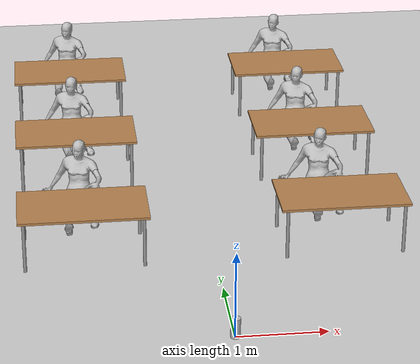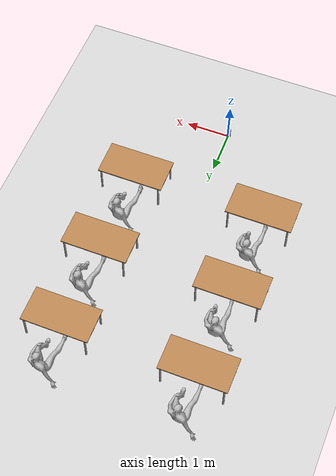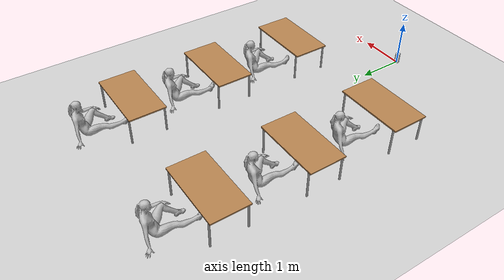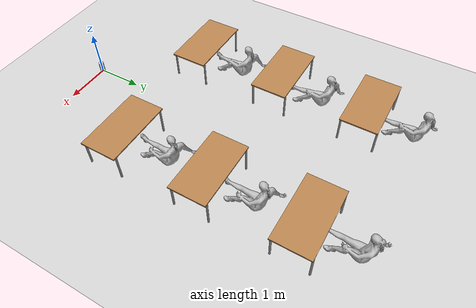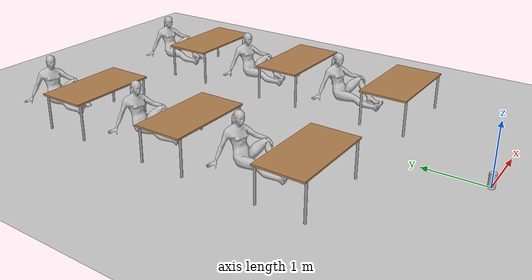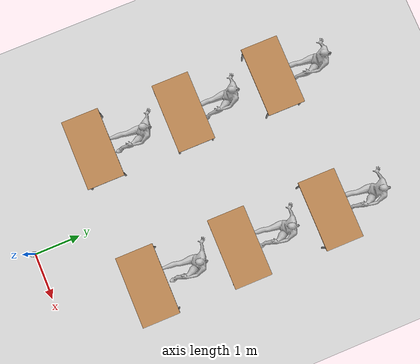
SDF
<sdf version="1.6">
 <world name="default">
  <light name="sun" type="directional">
   <pose>0 0 10 0 -0 0</pose>
   <diffuse>0.8 0.8 0.8 1</diffuse>
   <specular>0.2 0.2 0.2 1</specular>
   <attenuation>
    <range>1000</range>
    <constant>0.9</constant>
    <linear>0.01</linear>
    <quadratic>0.001</quadratic>
   </attenuation>
   <direction>-0.5 0.1 -0.9</direction>
  </light>
  <model name="ground_plane">
   <static>1</static>
   <link name="link">
    <collision name="collision">
     <geometry><plane><normal>0 0 1</normal><size>100 100</size></plane></geometry>
     <surface><friction><ode><mu>100</mu><mu2>50</mu2></ode></friction></surface>
    </collision>
    <visual name="visual">
     <cast_shadows>0</cast_shadows>
     <geometry><plane><normal>0 0 1</normal><size>100 100</size></plane></geometry>
     <material>
      <script><uri>file://media/materials/scripts/gazebo.material</uri><name>Gazebo/Grey</name></script>
     </material>
    </visual>
   </link>
  </model>
  <gravity>0 0 -9.8</gravity>
  <magnetic_field>6e-06 2.3e-05 -4.2e-05</magnetic_field>
  <atmosphere type="adiabatic"/>
  <physics name="default_physics" default="0" type="ode">
   <max_step_size>0.001</max_step_size>
   <real_time_factor>1</real_time_factor>
   <real_time_update_rate>1000</real_time_update_rate>
  </physics>
  <scene><ambient>0.4 0.4 0.4 1</ambient><background>0.7 0.7 0.7 1</background><shadows>1</shadows></scene>
  <audio><device>default</device></audio>
  <spherical_coordinates>
   <surface_model>EARTH_WGS84</surface_model>
   <latitude_deg>0</latitude_deg>
   <longitude_deg>0</longitude_deg>
   <elevation>0</elevation>
   <heading_deg>0</heading_deg>
  </spherical_coordinates>
  <model name="table">
   <static>1</static>
   <link name="link">
    <collision name="surface">
     <pose>0 0 1 0 -0 0</pose>
     <geometry><box><size>1.5 0.8 0.03</size></box></geometry>
     <surface><friction><ode><mu>0.6</mu><mu2>0.6</mu2></ode></friction></surface>
    </collision>
    <visual name="visual1">
     <pose>0 0 1 0 -0 0</pose>
     <geometry><box><size>1.5 0.8 0.03</size></box></geometry>
     <material>
      <script><uri>file://media/materials/scripts/gazebo.material</uri><name>Gazebo/Wood</name></script>
     </material>
    </visual>
    <collision name="front_left_leg">
     <pose>0.68 0.38 0.5 0 -0 0</pose>
     <geometry><cylinder><radius>0.02</radius><length>1</length></cylinder></geometry>
    </collision>
    <visual name="front_left_leg">
     <pose>0.68 0.38 0.5 0 -0 0</pose>
     <geometry><cylinder><radius>0.02</radius><length>1</length></cylinder></geometry>
     <material>
      <script><uri>file://media/materials/scripts/gazebo.material</uri><name>Gazebo/Grey</name></script>
     </material>
    </visual>
    <collision name="front_right_leg">
     <pose>0.68 -0.38 0.5 0 -0 0</pose>
     <geometry><cylinder><radius>0.02</radius><length>1</length></cylinder></geometry>
    </collision>
    <visual name="front_right_leg">
     <pose>0.68 -0.38 0.5 0 -0 0</pose>
     <geometry><cylinder><radius>0.02</radius><length>1</length></cylinder></geometry>
     <material>
      <script><uri>file://media/materials/scripts/gazebo.material</uri><name>Gazebo/Grey</name></script>
     </material>
    </visual>
    <collision name="back_right_leg">
     <pose>-0.68 -0.38 0.5 0 -0 0</pose>
     <geometry><cylinder><radius>0.02</radius><length>1</length></cylinder></geometry>
    </collision>
    <visual name="back_right_leg">
     <pose>-0.68 -0.38 0.5 0 -0 0</pose>
     <geometry><cylinder><radius>0.02</radius><length>1</length></cylinder></geometry>
     <material>
      <script><uri>file://media/materials/scripts/gazebo.material</uri><name>Gazebo/Grey</name></script>
     </material>
    </visual>
    <collision name="back_left_leg">
     <pose>-0.68 0.38 0.5 0 -0 0</pose>
     <geometry><cylinder><radius>0.02</radius><length>1</length></cylinder></geometry>
    </collision>
    <visual name="back_left_leg">
     <pose>-0.68 0.38 0.5 0 -0 0</pose>
     <geometry><cylinder><radius>0.02</radius><length>1</length></cylinder></geometry>
     <material>
      <script><uri>file://media/materials/scripts/gazebo.material</uri><name>Gazebo/Grey</name></script>
     </material>
    </visual>
   </link>
   <pose>1.5 2 -0.4 0 -0 0</pose>
  </model>
  <model name="table_clone">
   <static>1</static>
   <link name="link">
    <collision name="surface">
     <pose>0 0 1 0 -0 0</pose>
     <geometry><box><size>1.5 0.8 0.03</size></box></geometry>
     <surface><friction><ode><mu>0.6</mu><mu2>0.6</mu2></ode></friction></surface>
    </collision>
    <visual name="visual1">
     <pose>0 0 1 0 -0 0</pose>
     <geometry><box><size>1.5 0.8 0.03</size></box></geometry>
     <material>
      <script><uri>file://media/materials/scripts/gazebo.material</uri><name>Gazebo/Wood</name></script>
     </material>
    </visual>
    <collision name="front_left_leg">
     <pose>0.68 0.38 0.5 0 -0 0</pose>
     <geometry><cylinder><radius>0.02</radius><length>1</length></cylinder></geometry>
    </collision>
    <visual name="front_left_leg">
     <pose>0.68 0.38 0.5 0 -0 0</pose>
     <geometry><cylinder><radius>0.02</radius><length>1</length></cylinder></geometry>
     <material>
      <script><uri>file://media/materials/scripts/gazebo.material</uri><name>Gazebo/Grey</name></script>
     </material>
    </visual>
    <collision name="front_right_leg">
     <pose>0.68 -0.38 0.5 0 -0 0</pose>
     <geometry><cylinder><radius>0.02</radius><length>1</length></cylinder></geometry>
    </collision>
    <visual name="front_right_leg">
     <pose>0.68 -0.38 0.5 0 -0 0</pose>
     <geometry><cylinder><radius>0.02</radius><length>1</length></cylinder></geometry>
     <material>
      <script><uri>file://media/materials/scripts/gazebo.material</uri><name>Gazebo/Grey</name></script>
     </material>
    </visual>
    <collision name="back_right_leg">
     <pose>-0.68 -0.38 0.5 0 -0 0</pose>
     <geometry><cylinder><radius>0.02</radius><length>1</length></cylinder></geometry>
    </collision>
    <visual name="back_right_leg">
     <pose>-0.68 -0.38 0.5 0 -0 0</pose>
     <geometry><cylinder><radius>0.02</radius><length>1</length></cylinder></geometry>
     <material>
      <script><uri>file://media/materials/scripts/gazebo.material</uri><name>Gazebo/Grey</name></script>
     </material>
    </visual>
    <collision name="back_left_leg">
     <pose>-0.68 0.38 0.5 0 -0 0</pose>
     <geometry><cylinder><radius>0.02</radius><length>1</length></cylinder></geometry>
    </collision>
    <visual name="back_left_leg">
     <pose>-0.68 0.38 0.5 0 -0 0</pose>
     <geometry><cylinder><radius>0.02</radius><length>1</length></cylinder></geometry>
     <material>
      <script><uri>file://media/materials/scripts/gazebo.material</uri><name>Gazebo/Grey</name></script>
     </material>
    </visual>
   </link>
   <pose>-1.5 2 -0.4 0 -0 0</pose>
  </model>
  <model name="table_clone_0">
   <static>1</static>
   <link name="link">
    <collision name="surface">
     <pose>0 0 1 0 -0 0</pose>
     <geometry><box><size>1.5 0.8 0.03</size></box></geometry>
     <surface><friction><ode><mu>0.6</mu><mu2>0.6</mu2></ode></friction></surface>
    </collision>
    <visual name="visual1">
     <pose>0 0 1 0 -0 0</pose>
     <geometry><box><size>1.5 0.8 0.03</size></box></geometry>
     <material>
      <script><uri>file://media/materials/scripts/gazebo.material</uri><name>Gazebo/Wood</name></script>
     </material>
    </visual>
    <collision name="front_left_leg">
     <pose>0.68 0.38 0.5 0 -0 0</pose>
     <geometry><cylinder><radius>0.02</radius><length>1</length></cylinder></geometry>
    </collision>
    <visual name="front_left_leg">
     <pose>0.68 0.38 0.5 0 -0 0</pose>
     <geometry><cylinder><radius>0.02</radius><length>1</length></cylinder></geometry>
     <material>
      <script><uri>file://media/materials/scripts/gazebo.material</uri><name>Gazebo/Grey</name></script>
     </material>
    </visual>
    <collision name="front_right_leg">
     <pose>0.68 -0.38 0.5 0 -0 0</pose>
     <geometry><cylinder><radius>0.02</radius><length>1</length></cylinder></geometry>
    </collision>
    <visual name="front_right_leg">
     <pose>0.68 -0.38 0.5 0 -0 0</pose>
     <geometry><cylinder><radius>0.02</radius><length>1</length></cylinder></geometry>
     <material>
      <script><uri>file://media/materials/scripts/gazebo.material</uri><name>Gazebo/Grey</name></script>
     </material>
    </visual>
    <collision name="back_right_leg">
     <pose>-0.68 -0.38 0.5 0 -0 0</pose>
     <geometry><cylinder><radius>0.02</radius><length>1</length></cylinder></geometry>
    </collision>
    <visual name="back_right_leg">
     <pose>-0.68 -0.38 0.5 0 -0 0</pose>
     <geometry><cylinder><radius>0.02</radius><length>1</length></cylinder></geometry>
     <material>
      <script><uri>file://media/materials/scripts/gazebo.material</uri><name>Gazebo/Grey</name></script>
     </material>
    </visual>
    <collision name="back_left_leg">
     <pose>-0.68 0.38 0.5 0 -0 0</pose>
     <geometry><cylinder><radius>0.02</radius><length>1</length></cylinder></geometry>
    </collision>
    <visual name="back_left_leg">
     <pose>-0.68 0.38 0.5 0 -0 0</pose>
     <geometry><cylinder><radius>0.02</radius><length>1</length></cylinder></geometry>
     <material>
      <script><uri>file://media/materials/scripts/gazebo.material</uri><name>Gazebo/Grey</name></script>
     </material>
    </visual>
   </link>
   <pose>1.5 4 -0.4 0 -0 0</pose>
  </model>
  <model name="table_clone_1">
   <static>1</static>
   <link name="link">
    <collision name="surface">
     <pose>0 0 1 0 -0 0</pose>
     <geometry><box><size>1.5 0.8 0.03</size></box></geometry>
     <surface><friction><ode><mu>0.6</mu><mu2>0.6</mu2></ode></friction></surface>
    </collision>
    <visual name="visual1">
     <pose>0 0 1 0 -0 0</pose>
     <geometry><box><size>1.5 0.8 0.03</size></box></geometry>
     <material>
      <script><uri>file://media/materials/scripts/gazebo.material</uri><name>Gazebo/Wood</name></script>
     </material>
    </visual>
    <collision name="front_left_leg">
     <pose>0.68 0.38 0.5 0 -0 0</pose>
     <geometry><cylinder><radius>0.02</radius><length>1</length></cylinder></geometry>
    </collision>
    <visual name="front_left_leg">
     <pose>0.68 0.38 0.5 0 -0 0</pose>
     <geometry><cylinder><radius>0.02</radius><length>1</length></cylinder></geometry>
     <material>
      <script><uri>file://media/materials/scripts/gazebo.material</uri><name>Gazebo/Grey</name></script>
     </material>
    </visual>
    <collision name="front_right_leg">
     <pose>0.68 -0.38 0.5 0 -0 0</pose>
     <geometry><cylinder><radius>0.02</radius><length>1</length></cylinder></geometry>
    </collision>
    <visual name="front_right_leg">
     <pose>0.68 -0.38 0.5 0 -0 0</pose>
     <geometry><cylinder><radius>0.02</radius><length>1</length></cylinder></geometry>
     <material>
      <script><uri>file://media/materials/scripts/gazebo.material</uri><name>Gazebo/Grey</name></script>
     </material>
    </visual>
    <collision name="back_right_leg">
     <pose>-0.68 -0.38 0.5 0 -0 0</pose>
     <geometry><cylinder><radius>0.02</radius><length>1</length></cylinder></geometry>
    </collision>
    <visual name="back_right_leg">
     <pose>-0.68 -0.38 0.5 0 -0 0</pose>
     <geometry><cylinder><radius>0.02</radius><length>1</length></cylinder></geometry>
     <material>
      <script><uri>file://media/materials/scripts/gazebo.material</uri><name>Gazebo/Grey</name></script>
     </material>
    </visual>
    <collision name="back_left_leg">
     <pose>-0.68 0.38 0.5 0 -0 0</pose>
     <geometry><cylinder><radius>0.02</radius><length>1</length></cylinder></geometry>
    </collision>
    <visual name="back_left_leg">
     <pose>-0.68 0.38 0.5 0 -0 0</pose>
     <geometry><cylinder><radius>0.02</radius><length>1</length></cylinder></geometry>
     <material>
      <script><uri>file://media/materials/scripts/gazebo.material</uri><name>Gazebo/Grey</name></script>
     </material>
    </visual>
   </link>
   <pose>-1.5 4 -0.4 0 -0 0</pose>
  </model>
  <model name="table_clone_2">
   <static>1</static>
   <link name="link">
    <collision name="surface">
     <pose>0 0 1 0 -0 0</pose>
     <geometry><box><size>1.5 0.8 0.03</size></box></geometry>
     <surface><friction><ode><mu>0.6</mu><mu2>0.6</mu2></ode></friction></surface>
    </collision>
    <visual name="visual1">
     <pose>0 0 1 0 -0 0</pose>
     <geometry><box><size>1.5 0.8 0.03</size></box></geometry>
     <material>
      <script><uri>file://media/materials/scripts/gazebo.material</uri><name>Gazebo/Wood</name></script>
     </material>
    </visual>
    <collision name="front_left_leg">
     <pose>0.68 0.38 0.5 0 -0 0</pose>
     <geometry><cylinder><radius>0.02</radius><length>1</length></cylinder></geometry>
    </collision>
    <visual name="front_left_leg">
     <pose>0.68 0.38 0.5 0 -0 0</pose>
     <geometry><cylinder><radius>0.02</radius><length>1</length></cylinder></geometry>
     <material>
      <script><uri>file://media/materials/scripts/gazebo.material</uri><name>Gazebo/Grey</name></script>
     </material>
    </visual>
    <collision name="front_right_leg">
     <pose>0.68 -0.38 0.5 0 -0 0</pose>
     <geometry><cylinder><radius>0.02</radius><length>1</length></cylinder></geometry>
    </collision>
    <visual name="front_right_leg">
     <pose>0.68 -0.38 0.5 0 -0 0</pose>
     <geometry><cylinder><radius>0.02</radius><length>1</length></cylinder></geometry>
     <material>
      <script><uri>file://media/materials/scripts/gazebo.material</uri><name>Gazebo/Grey</name></script>
     </material>
    </visual>
    <collision name="back_right_leg">
     <pose>-0.68 -0.38 0.5 0 -0 0</pose>
     <geometry><cylinder><radius>0.02</radius><length>1</length></cylinder></geometry>
    </collision>
    <visual name="back_right_leg">
     <pose>-0.68 -0.38 0.5 0 -0 0</pose>
     <geometry><cylinder><radius>0.02</radius><length>1</length></cylinder></geometry>
     <material>
      <script><uri>file://media/materials/scripts/gazebo.material</uri><name>Gazebo/Grey</name></script>
     </material>
    </visual>
    <collision name="back_left_leg">
     <pose>-0.68 0.38 0.5 0 -0 0</pose>
     <geometry><cylinder><radius>0.02</radius><length>1</length></cylinder></geometry>
    </collision>
    <visual name="back_left_leg">
     <pose>-0.68 0.38 0.5 0 -0 0</pose>
     <geometry><cylinder><radius>0.02</radius><length>1</length></cylinder></geometry>
     <material>
      <script><uri>file://media/materials/scripts/gazebo.material</uri><name>Gazebo/Grey</name></script>
     </material>
    </visual>
   </link>
   <pose>1.5 6 -0.4 0 -0 0</pose>
  </model>
  <model name="table_clone_3">
   <static>1</static>
   <link name="link">
    <collision name="surface">
     <pose>0 0 1 0 -0 0</pose>
     <geometry><box><size>1.5 0.8 0.03</size></box></geometry>
     <surface><friction><ode><mu>0.6</mu><mu2>0.6</mu2></ode></friction></surface>
    </collision>
    <visual name="visual1">
     <pose>0 0 1 0 -0 0</pose>
     <geometry><box><size>1.5 0.8 0.03</size></box></geometry>
     <material>
      <script><uri>file://media/materials/scripts/gazebo.material</uri><name>Gazebo/Wood</name></script>
     </material>
    </visual>
    <collision name="front_left_leg">
     <pose>0.68 0.38 0.5 0 -0 0</pose>
     <geometry><cylinder><radius>0.02</radius><length>1</length></cylinder></geometry>
    </collision>
    <visual name="front_left_leg">
     <pose>0.68 0.38 0.5 0 -0 0</pose>
     <geometry><cylinder><radius>0.02</radius><length>1</length></cylinder></geometry>
     <material>
      <script><uri>file://media/materials/scripts/gazebo.material</uri><name>Gazebo/Grey</name></script>
     </material>
    </visual>
    <collision name="front_right_leg">
     <pose>0.68 -0.38 0.5 0 -0 0</pose>
     <geometry><cylinder><radius>0.02</radius><length>1</length></cylinder></geometry>
    </collision>
    <visual name="front_right_leg">
     <pose>0.68 -0.38 0.5 0 -0 0</pose>
     <geometry><cylinder><radius>0.02</radius><length>1</length></cylinder></geometry>
     <material>
      <script><uri>file://media/materials/scripts/gazebo.material</uri><name>Gazebo/Grey</name></script>
     </material>
    </visual>
    <collision name="back_right_leg">
     <pose>-0.68 -0.38 0.5 0 -0 0</pose>
     <geometry><cylinder><radius>0.02</radius><length>1</length></cylinder></geometry>
    </collision>
    <visual name="back_right_leg">
     <pose>-0.68 -0.38 0.5 0 -0 0</pose>
     <geometry><cylinder><radius>0.02</radius><length>1</length></cylinder></geometry>
     <material>
      <script><uri>file://media/materials/scripts/gazebo.material</uri><name>Gazebo/Grey</name></script>
     </material>
    </visual>
    <collision name="back_left_leg">
     <pose>-0.68 0.38 0.5 0 -0 0</pose>
     <geometry><cylinder><radius>0.02</radius><length>1</length></cylinder></geometry>
    </collision>
    <visual name="back_left_leg">
     <pose>-0.68 0.38 0.5 0 -0 0</pose>
     <geometry><cylinder><radius>0.02</radius><length>1</length></cylinder></geometry>
     <material>
      <script><uri>file://media/materials/scripts/gazebo.material</uri><name>Gazebo/Grey</name></script>
     </material>
    </visual>
   </link>
   <pose>-1.5 6 -0.4 0 -0 0</pose>
  </model>
  <model name="human">
   <link name="link">
    <inertial>
     <pose>0 -0.1 0.95 0 -0 0</pose>
     <mass>80</mass>
     <inertia><ixx>24.88</ixx><ixy>0</ixy><ixz>0</ixz><iyy>25.73</iyy><iyz>0</iyz><izz>2.48</izz></inertia>
    </inertial>
    <collision name="bottom">
     <pose>0 -0.1 0.01 0 -0 0</pose>
     <geometry><box><size>0.5 0.35 0.02</size></box></geometry>
    </collision>
    <collision name="person">
     <pose>0 0 0.02 0.04 -0 0</pose>
     <geometry><mesh><uri>model://human_v2/meshes/human_v2.dae</uri></mesh></geometry>
    </collision>
    <visual name="visual">
     <pose>0 0 0.02 0.04 -0 0</pose>
     <geometry><mesh><uri>model://human_v2/meshes/human_v2.dae</uri></mesh></geometry>
    </visual>
   </link>
   <pose>-1.49998 3 -0 1e-06 -1e-06 -0.00052</pose>
  </model>
  <model name="human_clone">
   <link name="link">
    <inertial>
     <pose>0 -0.1 0.95 0 -0 0</pose>
     <mass>80</mass>
     <inertia><ixx>24.88</ixx><ixy>0</ixy><ixz>0</ixz><iyy>25.73</iyy><iyz>0</iyz><izz>2.48</izz></inertia>
    </inertial>
    <collision name="bottom">
     <pose>0 -0.1 0.01 0 -0 0</pose>
     <geometry><box><size>0.5 0.35 0.02</size></box></geometry>
    </collision>
    <collision name="person">
     <pose>0 0 0.02 0.04 -0 0</pose>
     <geometry><mesh><uri>model://human_v2/meshes/human_v2.dae</uri></mesh></geometry>
    </collision>
    <visual name="visual">
     <pose>0 0 0.02 0.04 -0 0</pose>
     <geometry><mesh><uri>model://human_v2/meshes/human_v2.dae</uri></mesh></geometry>
    </visual>
   </link>
   <pose>1.4518 3.03113 -1e-06 -1e-06 1e-06 -0.004179</pose>
  </model>
  <model name="human_clone_0">
   <link name="link">
    <inertial>
     <pose>0 -0.1 0.95 0 -0 0</pose>
     <mass>80</mass>
     <inertia><ixx>24.88</ixx><ixy>0</ixy><ixz>0</ixz><iyy>25.73</iyy><iyz>0</iyz><izz>2.48</izz></inertia>
    </inertial>
    <collision name="bottom">
     <pose>0 -0.1 0.01 0 -0 0</pose>
     <geometry><box><size>0.5 0.35 0.02</size></box></geometry>
    </collision>
    <collision name="person">
     <pose>0 0 0.02 0.04 -0 0</pose>
     <geometry><mesh><uri>model://human_v2/meshes/human_v2.dae</uri></mesh></geometry>
    </collision>
    <visual name="visual">
     <pose>0 0 0.02 0.04 -0 0</pose>
     <geometry><mesh><uri>model://human_v2/meshes/human_v2.dae</uri></mesh></geometry>
    </visual>
   </link>
   <pose>-1.50251 4.96257 -1e-06 -1e-06 1e-06 0.100637</pose>
  </model>
  <model name="human_clone_1">
   <link name="link">
    <inertial>
     <pose>0 -0.1 0.95 0 -0 0</pose>
     <mass>80</mass>
     <inertia><ixx>24.88</ixx><ixy>0</ixy><ixz>0</ixz><iyy>25.73</iyy><iyz>0</iyz><izz>2.48</izz></inertia>
    </inertial>
    <collision name="bottom">
     <pose>0 -0.1 0.01 0 -0 0</pose>
     <geometry><box><size>0.5 0.35 0.02</size></box></geometry>
    </collision>
    <collision name="person">
     <pose>0 0 0.02 0.04 -0 0</pose>
     <geometry><mesh><uri>model://human_v2/meshes/human_v2.dae</uri></mesh></geometry>
    </collision>
    <visual name="visual">
     <pose>0 0 0.02 0.04 -0 0</pose>
     <geometry><mesh><uri>model://human_v2/meshes/human_v2.dae</uri></mesh></geometry>
    </visual>
   </link>
   <pose>1.50023 5 -0 1e-06 -1e-06 -0.001459</pose>
  </model>
  <model name="human_clone_2">
   <link name="link">
    <inertial>
     <pose>0 -0.1 0.95 0 -0 0</pose>
     <mass>80</mass>
     <inertia><ixx>24.88</ixx><ixy>0</ixy><ixz>0</ixz><iyy>25.73</iyy><iyz>0</iyz><izz>2.48</izz></inertia>
    </inertial>
    <collision name="bottom">
     <pose>0 -0.1 0.01 0 -0 0</pose>
     <geometry><box><size>0.5 0.35 0.02</size></box></geometry>
    </collision>
    <collision name="person">
     <pose>0 0 0.02 0.04 -0 0</pose>
     <geometry><mesh><uri>model://human_v2/meshes/human_v2.dae</uri></mesh></geometry>
    </collision>
    <visual name="visual">
     <pose>0 0 0.02 0.04 -0 0</pose>
     <geometry><mesh><uri>model://human_v2/meshes/human_v2.dae</uri></mesh></geometry>
    </visual>
   </link>
   <pose>-1.49994 7 -1e-06 -1e-06 1e-06 -0.001211</pose>
  </model>
  <model name="human_clone_3">
   <link name="link">
    <inertial>
     <pose>0 -0.1 0.95 0 -0 0</pose>
     <mass>80</mass>
     <inertia><ixx>24.88</ixx><ixy>0</ixy><ixz>0</ixz><iyy>25.73</iyy><iyz>0</iyz><izz>2.48</izz></inertia>
    </inertial>
    <collision name="bottom">
     <pose>0 -0.1 0.01 0 -0 0</pose>
     <geometry><box><size>0.5 0.35 0.02</size></box></geometry>
    </collision>
    <collision name="person">
     <pose>0 0 0.02 0.04 -0 0</pose>
     <geometry><mesh><uri>model://human_v2/meshes/human_v2.dae</uri></mesh></geometry>
    </collision>
    <visual name="visual">
     <pose>0 0 0.02 0.04 -0 0</pose>
     <geometry><mesh><uri>model://human_v2/meshes/human_v2.dae</uri></mesh></geometry>
    </visual>
   </link>
   <pose>1.50015 7 0 0 -1e-06 -0.001921</pose>
  </model>
  <model name="beer">
   <link name="link">
    <pose>0 0 0.115 0 -0 0</pose>
    <inertial>
     <mass>0.39</mass>
     <inertia><ixx>0.00058</ixx><ixy>0</ixy><ixz>0</ixz><iyy>0.00058</iyy><iyz>0</iyz><izz>0.00019</izz></inertia>
    </inertial>
    <collision name="collision">
     <geometry><cylinder><radius>0.055</radius><length>0.23</length></cylinder></geometry>
    </collision>
    <visual name="visual">
     <geometry><cylinder><radius>0.055</radius><length>0.23</length></cylinder></geometry>
     <material>
      <script>
       <uri>model://beer/materials/scripts</uri>
       <uri>model://beer/materials/textures</uri>
       <name>Beer/Diffuse</name>
      </script>
     </material>
    </visual>
   </link>
   <pose>-0 -0 -8e-06 -0 -0 -3e-06</pose>
  </model>
 </world>
</sdf>
